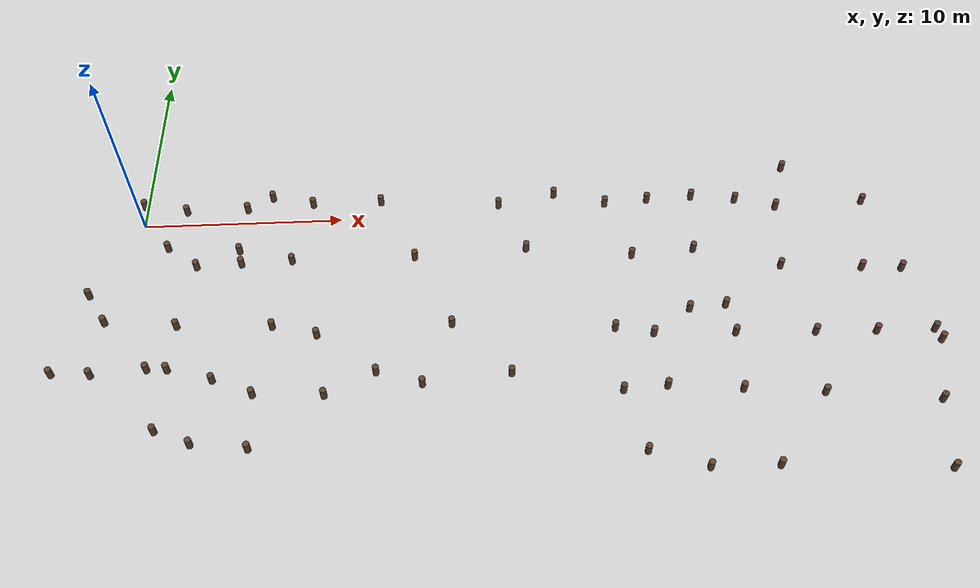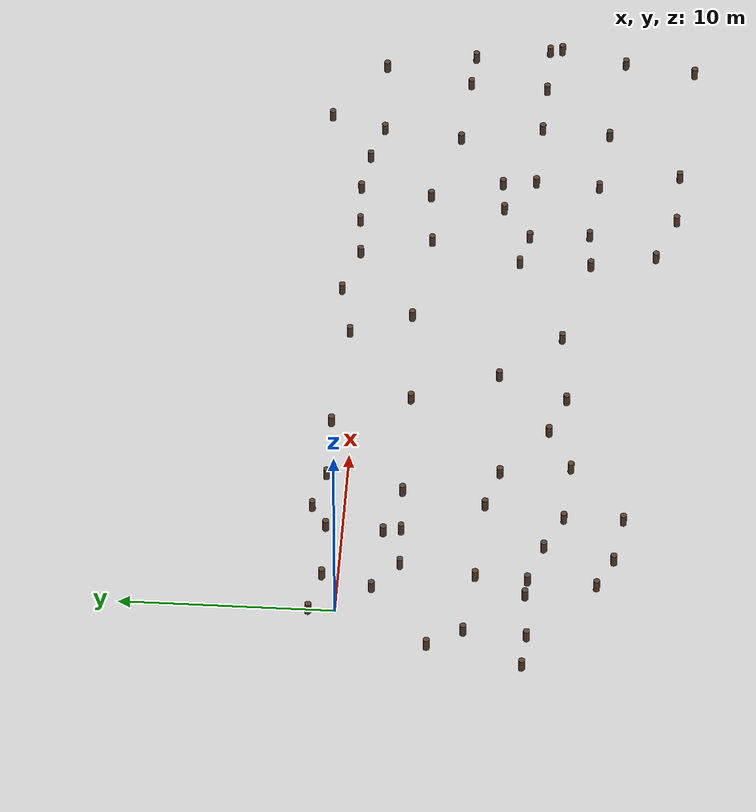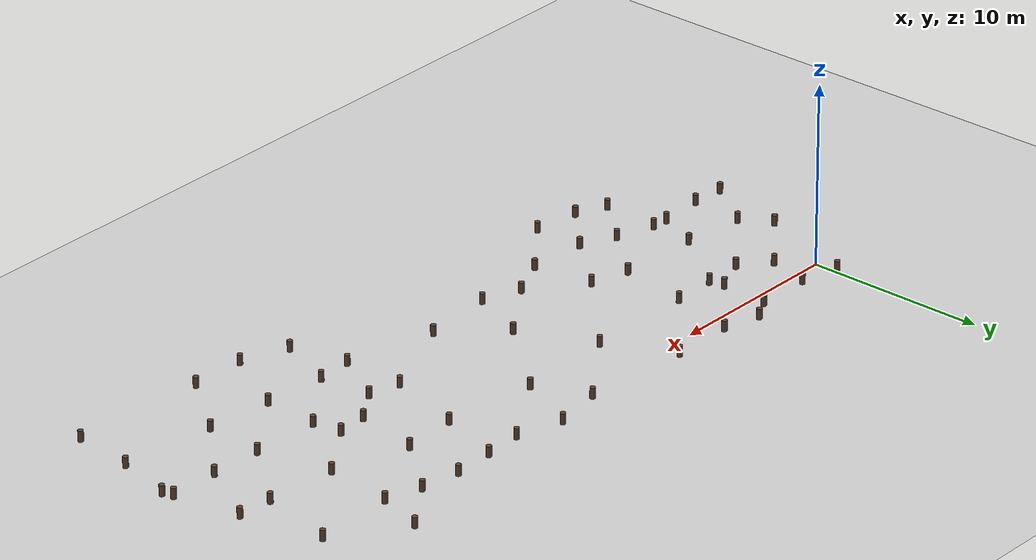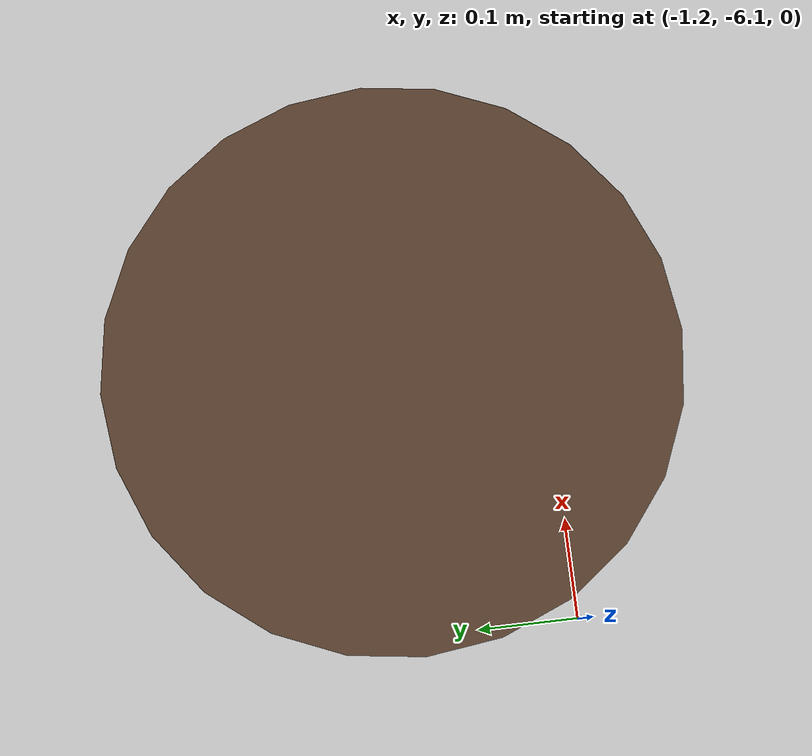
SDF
<?xml version="1.0"?>
<sdf version="1.6">
  <world name="orchard_world">
    <include>
      <uri>model://sun</uri>
    </include>

    <include>
      <uri>model://ground_plane</uri>
    </include>

    <!-- Trees: 64 includes of model://tree_trunk -->
    <include>
      <uri>model://tree_trunk</uri>
      <name>tree_0000</name>
      <pose>37.219902 -15.308496 0 0 0 0</pose>
    </include>
    <include>
      <uri>model://tree_trunk</uri>
      <name>tree_0001</name>
      <pose>29.690983 -14.830562 0 0 0 0</pose>
    </include>
    <include>
      <uri>model://tree_trunk</uri>
      <name>tree_0002</name>
      <pose>26.606134 -14.784669 0 0 0 0</pose>
    </include>
    <include>
      <uri>model://tree_trunk</uri>
      <name>tree_0003</name>
      <pose>23.985140 -13.874324 0 0 0 0</pose>
    </include>
    <include>
      <uri>model://tree_trunk</uri>
      <name>tree_0004</name>
      <pose>6.359442 -12.985138 0 0 0 0</pose>
    </include>
    <include>
      <uri>model://tree_trunk</uri>
      <name>tree_0005</name>
      <pose>3.782352 -12.650820 0 0 0 0</pose>
    </include>
    <include>
      <uri>model://tree_trunk</uri>
      <name>tree_0006</name>
      <pose>2.099857 -11.918635 0 0 0 0</pose>
    </include>
    <include>
      <uri>model://tree_trunk</uri>
      <name>tree_0007</name>
      <pose>37.691029 -11.894135 0 0 0 0</pose>
    </include>
    <include>
      <uri>model://tree_trunk</uri>
      <name>tree_0008</name>
      <pose>32.448795 -11.296951 0 0 0 0</pose>
    </include>
    <include>
      <uri>model://tree_trunk</uri>
      <name>tree_0009</name>
      <pose>28.738689 -10.944644 0 0 0 0</pose>
    </include>
    <include>
      <uri>model://tree_trunk</uri>
      <name>tree_0010</name>
      <pose>23.246721 -10.756615 0 0 0 0</pose>
    </include>
    <include>
      <uri>model://tree_trunk</uri>
      <name>tree_0011</name>
      <pose>25.296997 -10.616654 0 0 0 0</pose>
    </include>
    <include>
      <uri>model://tree_trunk</uri>
      <name>tree_0012</name>
      <pose>9.582672 -10.406878 0 0 0 0</pose>
    </include>
    <include>
      <uri>model://tree_trunk</uri>
      <name>tree_0013</name>
      <pose>6.310731 -10.220657 0 0 0 0</pose>
    </include>
    <include>
      <uri>model://tree_trunk</uri>
      <name>tree_0014</name>
      <pose>14.065380 -10.006548 0 0 0 0</pose>
    </include>
    <include>
      <uri>model://tree_trunk</uri>
      <name>tree_0015</name>
      <pose>18.189068 -9.612799 0 0 0 0</pose>
    </include>
    <include>
      <uri>model://tree_trunk</uri>
      <name>tree_0016</name>
      <pose>4.408813 -9.374705 0 0 0 0</pose>
    </include>
    <include>
      <uri>model://tree_trunk</uri>
      <name>tree_0017</name>
      <pose>11.927294 -9.275911 0 0 0 0</pose>
    </include>
    <include>
      <uri>model://tree_trunk</uri>
      <name>tree_0018</name>
      <pose>-1.236926 -8.851588 0 0 0 0</pose>
    </include>
    <include>
      <uri>model://tree_trunk</uri>
      <name>tree_0019</name>
      <pose>2.266909 -8.723228 0 0 0 0</pose>
    </include>
    <include>
      <uri>model://tree_trunk</uri>
      <name>tree_0020</name>
      <pose>-3.064481 -8.720198 0 0 0 0</pose>
    </include>
    <include>
      <uri>model://tree_trunk</uri>
      <name>tree_0021</name>
      <pose>38.556816 -8.702170 0 0 0 0</pose>
    </include>
    <include>
      <uri>model://tree_trunk</uri>
      <name>tree_0022</name>
      <pose>1.322417 -8.663923 0 0 0 0</pose>
    </include>
    <include>
      <uri>model://tree_trunk</uri>
      <name>tree_0023</name>
      <pose>38.391872 -8.099730 0 0 0 0</pose>
    </include>
    <include>
      <uri>model://tree_trunk</uri>
      <name>tree_0024</name>
      <pose>35.600224 -8.087446 0 0 0 0</pose>
    </include>
    <include>
      <uri>model://tree_trunk</uri>
      <name>tree_0025</name>
      <pose>32.706268 -7.998748 0 0 0 0</pose>
    </include>
    <include>
      <uri>model://tree_trunk</uri>
      <name>tree_0026</name>
      <pose>28.911392 -7.863572 0 0 0 0</pose>
    </include>
    <include>
      <uri>model://tree_trunk</uri>
      <name>tree_0027</name>
      <pose>25.029306 -7.729527 0 0 0 0</pose>
    </include>
    <include>
      <uri>model://tree_trunk</uri>
      <name>tree_0028</name>
      <pose>23.231329 -7.336369 0 0 0 0</pose>
    </include>
    <include>
      <uri>model://tree_trunk</uri>
      <name>tree_0029</name>
      <pose>9.082815 -7.103478 0 0 0 0</pose>
    </include>
    <include>
      <uri>model://tree_trunk</uri>
      <name>tree_0030</name>
      <pose>15.483120 -6.752225 0 0 0 0</pose>
    </include>
    <include>
      <uri>model://tree_trunk</uri>
      <name>tree_0031</name>
      <pose>6.944171 -6.520201 0 0 0 0</pose>
    </include>
    <include>
      <uri>model://tree_trunk</uri>
      <name>tree_0032</name>
      <pose>26.923798 -6.401568 0 0 0 0</pose>
    </include>
    <include>
      <uri>model://tree_trunk</uri>
      <name>tree_0033</name>
      <pose>2.402049 -6.299355 0 0 0 0</pose>
    </include>
    <include>
      <uri>model://tree_trunk</uri>
      <name>tree_0034</name>
      <pose>28.694939 -6.250850 0 0 0 0</pose>
    </include>
    <include>
      <uri>model://tree_trunk</uri>
      <name>tree_0035</name>
      <pose>-1.061225 -5.936653 0 0 0 0</pose>
    </include>
    <include>
      <uri>model://tree_trunk</uri>
      <name>tree_0036</name>
      <pose>37.737026 -4.457987 0 0 0 0</pose>
    </include>
    <include>
      <uri>model://tree_trunk</uri>
      <name>tree_0037</name>
      <pose>35.784821 -4.325768 0 0 0 0</pose>
    </include>
    <include>
      <uri>model://tree_trunk</uri>
      <name>tree_0038</name>
      <pose>-2.045352 -4.312446 0 0 0 0</pose>
    </include>
    <include>
      <uri>model://tree_trunk</uri>
      <name>tree_0039</name>
      <pose>31.801693 -4.037511 0 0 0 0</pose>
    </include>
    <include>
      <uri>model://tree_trunk</uri>
      <name>tree_0040</name>
      <pose>24.509323 -3.034676 0 0 0 0</pose>
    </include>
    <include>
      <uri>model://tree_trunk</uri>
      <name>tree_0041</name>
      <pose>27.627594 -2.804038 0 0 0 0</pose>
    </include>
    <include>
      <uri>model://tree_trunk</uri>
      <name>tree_0042</name>
      <pose>2.951628 -2.791817 0 0 0 0</pose>
    </include>
    <include>
      <uri>model://tree_trunk</uri>
      <name>tree_0043</name>
      <pose>5.148377 -2.714532 0 0 0 0</pose>
    </include>
    <include>
      <uri>model://tree_trunk</uri>
      <name>tree_0044</name>
      <pose>13.723814 -2.657300 0 0 0 0</pose>
    </include>
    <include>
      <uri>model://tree_trunk</uri>
      <name>tree_0045</name>
      <pose>7.642208 -2.630138 0 0 0 0</pose>
    </include>
    <include>
      <uri>model://tree_trunk</uri>
      <name>tree_0046</name>
      <pose>19.284842 -2.381163 0 0 0 0</pose>
    </include>
    <include>
      <uri>model://tree_trunk</uri>
      <name>tree_0047</name>
      <pose>4.983936 -1.888345 0 0 0 0</pose>
    </include>
    <include>
      <uri>model://tree_trunk</uri>
      <name>tree_0048</name>
      <pose>1.405865 -1.573769 0 0 0 0</pose>
    </include>
    <include>
      <uri>model://tree_trunk</uri>
      <name>tree_0049</name>
      <pose>32.263702 -0.252812 0 0 0 0</pose>
    </include>
    <include>
      <uri>model://tree_trunk</uri>
      <name>tree_0050</name>
      <pose>36.785580 -0.087710 0 0 0 0</pose>
    </include>
    <include>
      <uri>model://tree_trunk</uri>
      <name>tree_0051</name>
      <pose>30.244400 0.309994 0 0 0 0</pose>
    </include>
    <include>
      <uri>model://tree_trunk</uri>
      <name>tree_0052</name>
      <pose>23.498888 0.371808 0 0 0 0</pose>
    </include>
    <include>
      <uri>model://tree_trunk</uri>
      <name>tree_0053</name>
      <pose>18.028931 0.518538 0 0 0 0</pose>
    </include>
    <include>
      <uri>model://tree_trunk</uri>
      <name>tree_0054</name>
      <pose>25.699133 0.524303 0 0 0 0</pose>
    </include>
    <include>
      <uri>model://tree_trunk</uri>
      <name>tree_0055</name>
      <pose>28.011545 0.624888 0 0 0 0</pose>
    </include>
    <include>
      <uri>model://tree_trunk</uri>
      <name>tree_0056</name>
      <pose>2.068219 0.769764 0 0 0 0</pose>
    </include>
    <include>
      <uri>model://tree_trunk</uri>
      <name>tree_0057</name>
      <pose>5.164597 0.786292 0 0 0 0</pose>
    </include>
    <include>
      <uri>model://tree_trunk</uri>
      <name>tree_0058</name>
      <pose>8.502731 0.981639 0 0 0 0</pose>
    </include>
    <include>
      <uri>model://tree_trunk</uri>
      <name>tree_0059</name>
      <pose>11.984516 0.995723 0 0 0 0</pose>
    </include>
    <include>
      <uri>model://tree_trunk</uri>
      <name>tree_0060</name>
      <pose>20.918879 1.090064 0 0 0 0</pose>
    </include>
    <include>
      <uri>model://tree_trunk</uri>
      <name>tree_0061</name>
      <pose>-0.141941 1.240557 0 0 0 0</pose>
    </include>
    <include>
      <uri>model://tree_trunk</uri>
      <name>tree_0062</name>
      <pose>6.404523 1.505331 0 0 0 0</pose>
    </include>
    <include>
      <uri>model://tree_trunk</uri>
      <name>tree_0063</name>
      <pose>33.096916 2.368674 0 0 0 0</pose>
    </include>
  </world>
</sdf>

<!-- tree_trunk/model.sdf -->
<sdf version="1.6">
  <model name="tree_trunk">
    <static>true</static>
    <link name="link">
      <collision name="trunk_collision">
        <pose>0 0 0.30 0 0 0</pose>
        <geometry>
          <cylinder>
            <radius>0.15</radius>
            <length>0.60</length>
          </cylinder>
        </geometry>
      </collision>
      <visual name="trunk_visual">
        <pose>0 0 0.30 0 0 0</pose>
        <geometry>
          <cylinder>
            <radius>0.15</radius>
            <length>0.60</length>
          </cylinder>
        </geometry>
        <material>
          <ambient>0.25 0.18 0.12 1</ambient>
          <diffuse>0.35 0.25 0.18 1</diffuse>
        </material>
      </visual>
    </link>
  </model>
</sdf>
